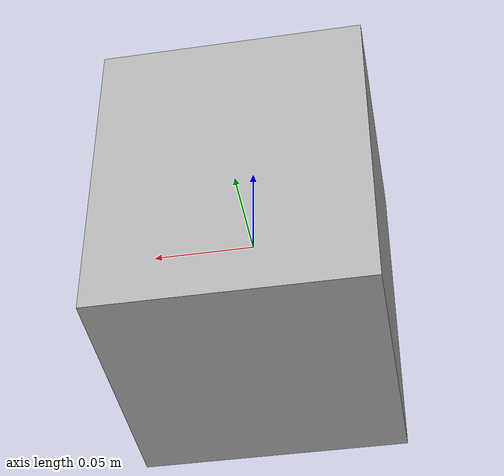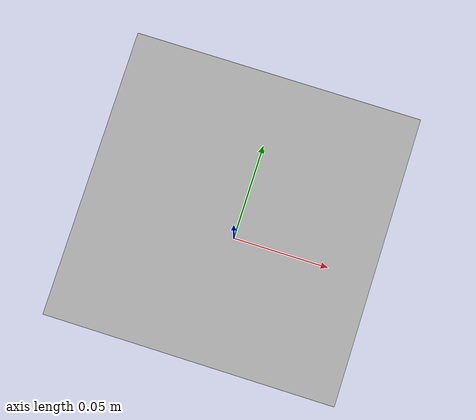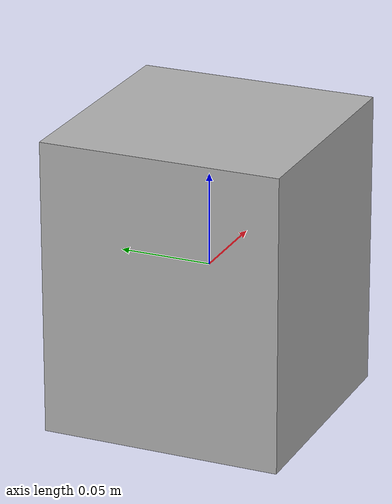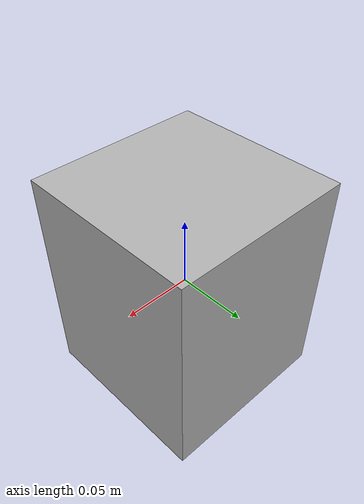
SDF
<?xml version="1.0"?>
<!-- Componente "utillaje" de la biblioteca del contrato 2.0. Origen = centro geométrico. -->
<sdf version="1.9"><model name='utillaje'><static>true</static><link name='link'><collision name='c'><geometry><box><size>0.13 0.13 0.16</size></box></geometry></collision><visual name='v'><geometry><box><size>0.13 0.13 0.16</size></box></geometry><material><ambient>0.7 0.7 0.7 1</ambient><diffuse>0.7 0.7 0.7 1</diffuse></material></visual></link></model></sdf>
